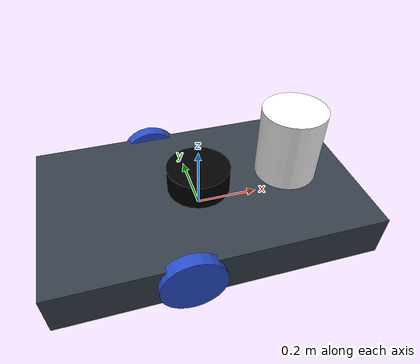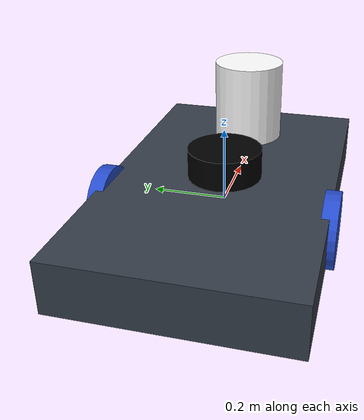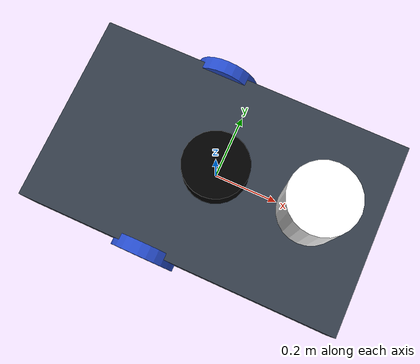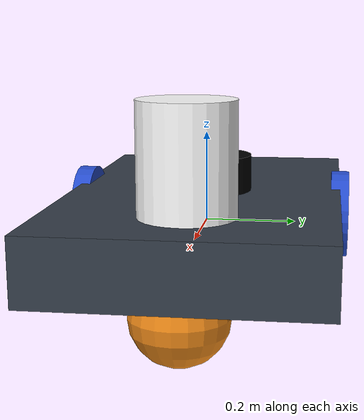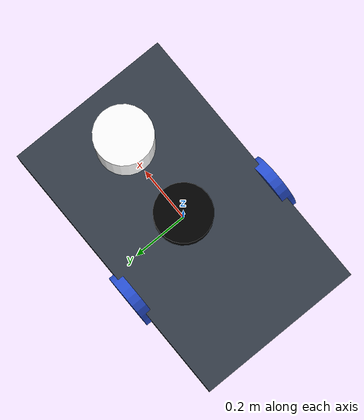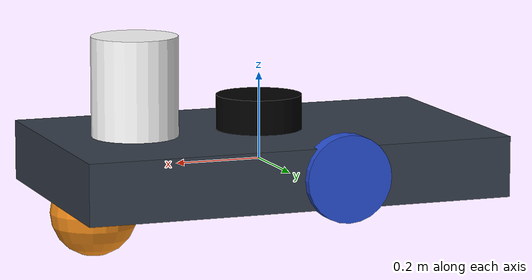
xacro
<?xml version="1.0" ?>
<!-- working fle -->
<robot name="savvyage" xmlns:xacro="http://www.ros.org/wiki/xacro" >

  <xacro:include filename="$(find rover_description)/urdf/materials.xacro" />
  <xacro:include filename="$(find rover_description)/urdf/bot/bot.gazebo" />
  <xacro:include filename="$(find rover_description)/urdf/bot/macros.xacro" />
  <xacro:property name="camera_link" value="0.08" /> <!-- Size of square 'camera' box -->
  <xacro:property name="scale" value="2" />

  <link name="link_chassis">
    <!-- pose and inertial -->
    <pose>0 0 0.25 0 0 0</pose>

    <inertial>
      <mass value="5"/>
      <origin rpy="0 0 0" xyz="0 0 0.25"/>
      <inertia ixx="0.0395416666667" ixy="0" ixz="0" iyy="0.106208333333" iyz="0" izz="0.106208333333"/>
    </inertial>

    <collision name="collision_chassis">
      <geometry>
        <box size="1 0.6 0.14"/>
      </geometry>
    </collision>

    <visual>
      <origin rpy="0 0 0" xyz="0 0 0"/>
      <geometry>
        <box size="1 0.6 0.14"/>
      </geometry>
      <material name="blue"/>
    </visual>

    <!-- caster front -->
    <collision name="caster_front_collision">
      <origin rpy=" 0 0 0" xyz="0.7 0 -0.1"/>
      <geometry>
        <sphere radius="0.12"/>
      </geometry>
      <surface>
        <friction>
          <ode>
            <mu>0</mu>
            <mu2>0</mu2>
            <slip1>1.0</slip1>
            <slip2>1.0</slip2>
          </ode>
        </friction>
      </surface>
    </collision>
    <visual name="caster_front_visual">
      <origin rpy=" 0 0 0" xyz="0.4 0 -0.1"/>
      <geometry>
        <sphere radius="0.1"/>
      </geometry>
    </visual>
    </link>

  <link name="sensor_laser">
    <inertial>
      <origin xyz="0 0 0" rpy="0 0 0" />
      <mass value="1" />
      <!-- RANDOM INERTIA BELOW -->
      <inertia ixx="0.02" ixy="0" ixz="0" iyy="0.02" iyz="0" izz="0.02"/>
    </inertial>

    <visual>
      <origin xyz="0 0 0" rpy="0 0 0" />
      <geometry>
        <cylinder radius="0.1" length="0.3"/>
      </geometry>
      <material name="white" />
    </visual>

    <collision>
      <origin xyz="0 0 0" rpy="0 0 0"/>
      <geometry>
        <cylinder radius="0.1" length="0.3"/>
      </geometry>
    </collision>
  </link>

  <joint name="joint_sensor_laser" type="fixed">
    <axis xyz="0 1 0" />
    <origin xyz="0.3 0 0.15" rpy="0 0 0"/>
    <parent link="link_chassis"/>
    <child link="sensor_laser"/>
  </joint>

  <!-- Camera -->
  <link name="camera_link">
    <collision>
      <origin xyz="0 0 0" rpy="0 0 0"/>
      <geometry>
        <cylinder radius="0.01" length="0.01"/>
      </geometry>
    </collision>

    <visual>
      <origin xyz="0 0 0" rpy="0 0 0"/>
      <geometry>
        <cylinder radius="0.01" length="0.01"/>
      </geometry>
      <material name="green"/>
    </visual>

    <inertial>
      <mass value="1e-5" />
      <origin xyz="0 0 0" rpy="0 0 0"/>
      <inertia ixx="1e-6" ixy="0" ixz="0" iyy="1e-6" iyz="0" izz="1e-6" />
    </inertial>
  </link>

  <joint name="camera_joint" type="fixed">
    <axis xyz="0 2 0" />
    <origin xyz="0.3 0 0.25" rpy="0 0 0"/>
    <parent link="link_chassis"/>
    <child link="camera_link"/>
  </joint>

  <!-- IMU -->
  <link name="imu_link">
    <collision>
      <origin xyz="0 0 0" rpy="0 0 0"/>
      <geometry>
        <cylinder radius="0.1" length="0.1"/>
      </geometry>
    </collision>

    <visual>
      <origin xyz="0 0 0" rpy="0 0 0"/>
      <geometry>
        <cylinder radius="0.1" length="0.1"/>
      </geometry>
      <material name="black"/>
    </visual>

    <inertial>
      <mass value="1e-5" />
      <origin xyz="0 0 0" rpy="0 0 0"/>
      <inertia ixx="1e-6" ixy="0" ixz="0" iyy="1e-6" iyz="0" izz="1e-6" />
    </inertial>
  </link>

  <joint name="imu_joint" type="fixed">
    <axis xyz="0 2 0" />
    <origin xyz="0 0 0.1" rpy="0 0 0"/>
    <parent link="link_chassis"/>
    <child link="imu_link"/>
  </joint>

  <!-- Create wheel right -->
  <xacro:link_wheel name= "link_right_wheel" />

  <!--   Joint for right wheel  -->
  <xacro:joint_wheel name="joint_right_wheel"  child="link_right_wheel"  origin_xyz="-0.1 -0.3 0"  />

  <!-- Left Wheel link -->
  <xacro:link_wheel name= "link_left_wheel" />

  <!--   Joint for right wheel  -->
  <xacro:joint_wheel name="joint_left_wheel"   child="link_left_wheel"   origin_xyz="-0.1 0.3 0"  />

</robot>

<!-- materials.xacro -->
// No changes were made
<?xml version="1.0" ?>

<robot>
  <material name="black">
    <color rgba="0.0 0.0 0.0 1.0"/>
  </material>
  <material name="blue">
    <color rgba="0.203125 0.23828125 0.28515625 1.0"/>
  </material>
  <material name="green">
    <color rgba="0.0 0.8 0.0 1.0"/>
  </material>
  <material name="grey">
    <color rgba="0.2 0.2 0.2 1.0"/>
  </material>
  <material name="orange">
    <color rgba="1.0 0.423529411765 0.0392156862745 1.0"/>
  </material>
  <material name="brown">
    <color rgba="0.870588235294 0.811764705882 0.764705882353 1.0"/>
  </material>
  <material name="red">
    <color rgba="0.80078125 0.12890625 0.1328125 1.0"/>
  </material>
  <material name="white">
    <color rgba="1.0 1.0 1.0 1.0"/>
  </material>

</robot>

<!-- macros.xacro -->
<!-- used inside bot -->
<robot xmlns:xacro="http://www.ros.org/wiki/xacro">
    <xacro:macro name="link_wheel" params="name">
        <link name="${name}">
            <inertial>
              <mass value="0.2"/>
              <origin rpy="0 1.5707 1.5707" xyz="0 0 0"/>
              <inertia ixx="0.000526666666667" ixy="0" ixz="0" iyy="0.000526666666667" iyz="0" izz="0.001"/>
            </inertial>
            <collision name="${name}_collision">
              <origin rpy="0 1.5707 1.5707" xyz="0 0 0"/>
              <geometry>
                <cylinder length="0.04" radius="0.1"/>
              </geometry>
            </collision>
            <visual name="${name}_visual">
              <origin rpy="0 1.5707 1.5707" xyz="0 0 0"/>
              <geometry>
                <cylinder length="0.04" radius="0.1"/>
              </geometry>
            </visual>
        </link>
    </xacro:macro>

    <xacro:macro name="joint_wheel" params="name child origin_xyz">
      <joint name="${name}" type="continuous">
        <origin rpy="0 0 0" xyz="${origin_xyz}"/>
        <child link="${child}"/>
        <parent link="link_chassis"/>
        <axis rpy="0 0 0" xyz="0 2 0"/>
        <limit effort="10000" velocity="1000"/>
        <dynamics damping="1.0" friction="1.0"/>
      </joint>
    </xacro:macro>

    <xacro:macro name="cylinder_inertia" params="mass r l">
      <inertia ixx="${mass*(3*r*r+l*l)/12}" ixy = "0" ixz = "0"
                iyy="${mass*(3*r*r+l*l)/12}" iyz = "0" izz="${mass*(r*r)/2}" />
    </xacro:macro>

</robot>
